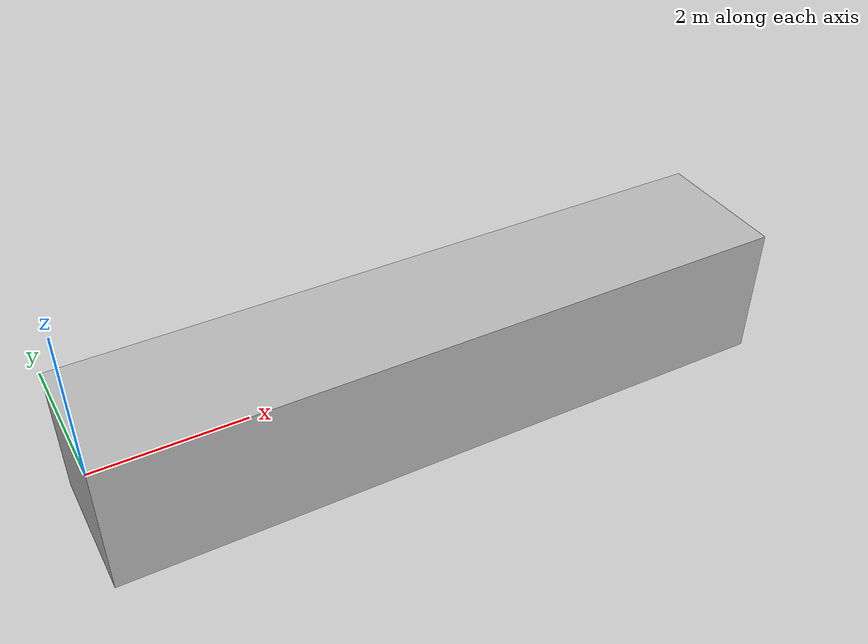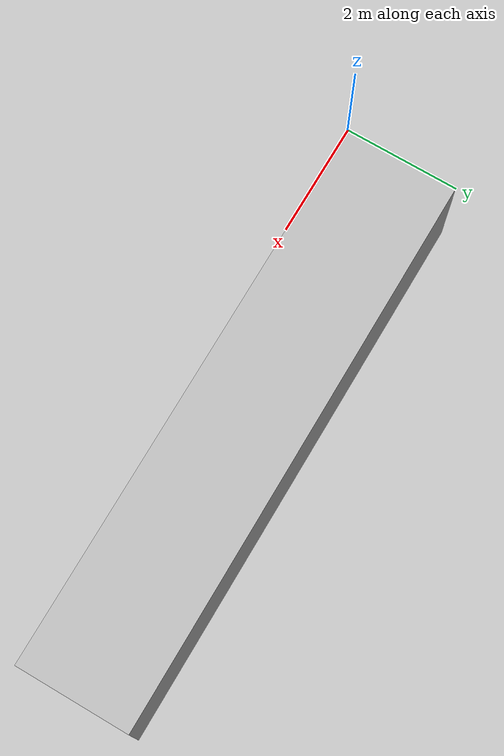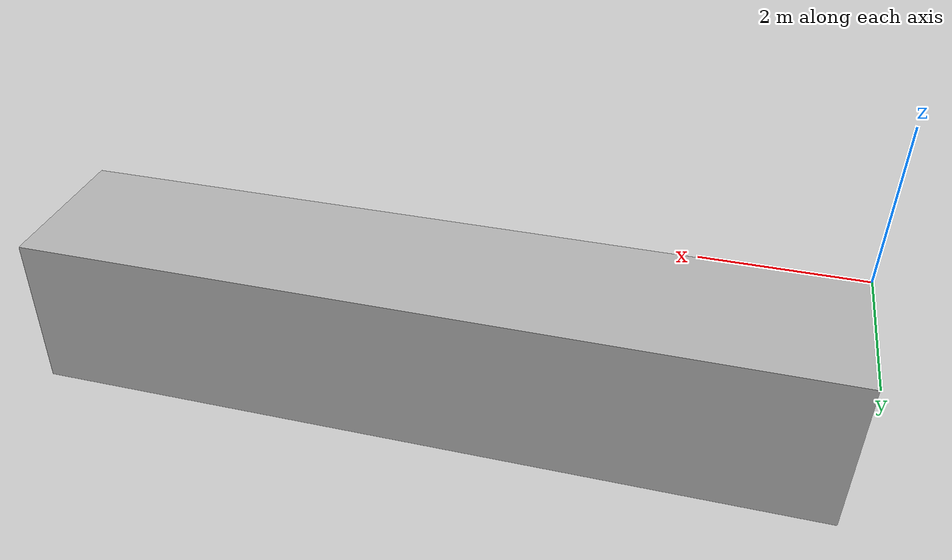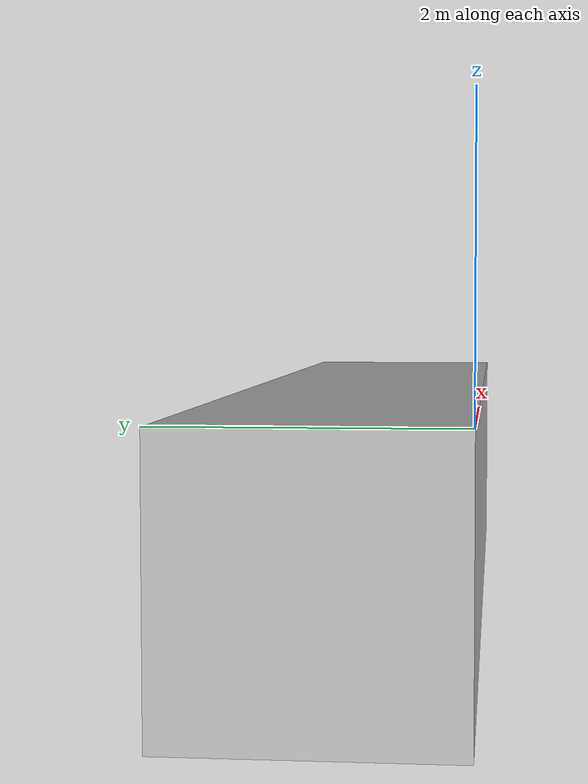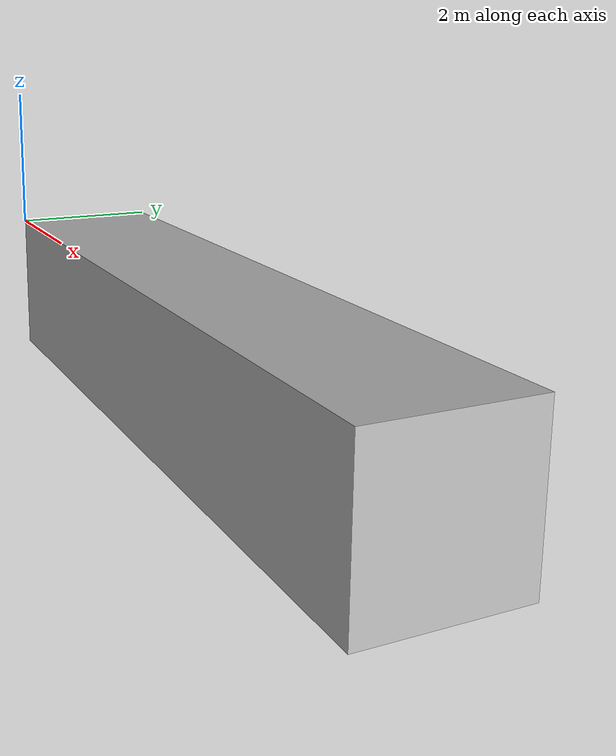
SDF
<?xml version="1.0"?>
<sdf version="1.6">
  <model name="room_wall">
    <static>true</static>
    <link name="link">
      <pose>0 0 0 0 0 0</pose>
      <visual name="room_visual">
        <pose>0 0 0 0 0 0</pose>
        <geometry>
          <mesh>
            <uri>meshes/room.obj</uri>
            <scale>1 1 1</scale>
          </mesh>
        </geometry>
      </visual>
      <collision name="room_collision">
        <pose>0 0 0 0 0 0</pose>
        <geometry>
          <mesh>
            <uri>meshes/room.obj</uri>
            <scale>1 1 1</scale>
          </mesh>
        </geometry>
      </collision>
    </link>
  </model>
</sdf>
